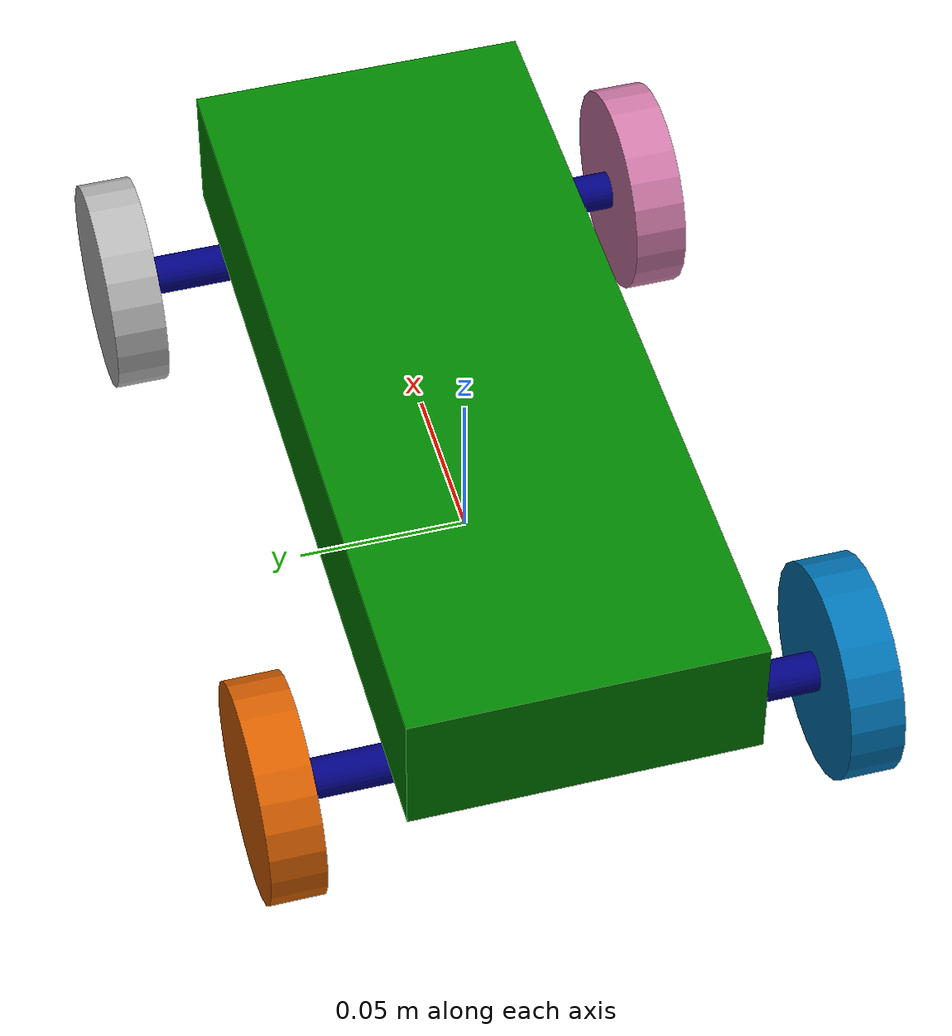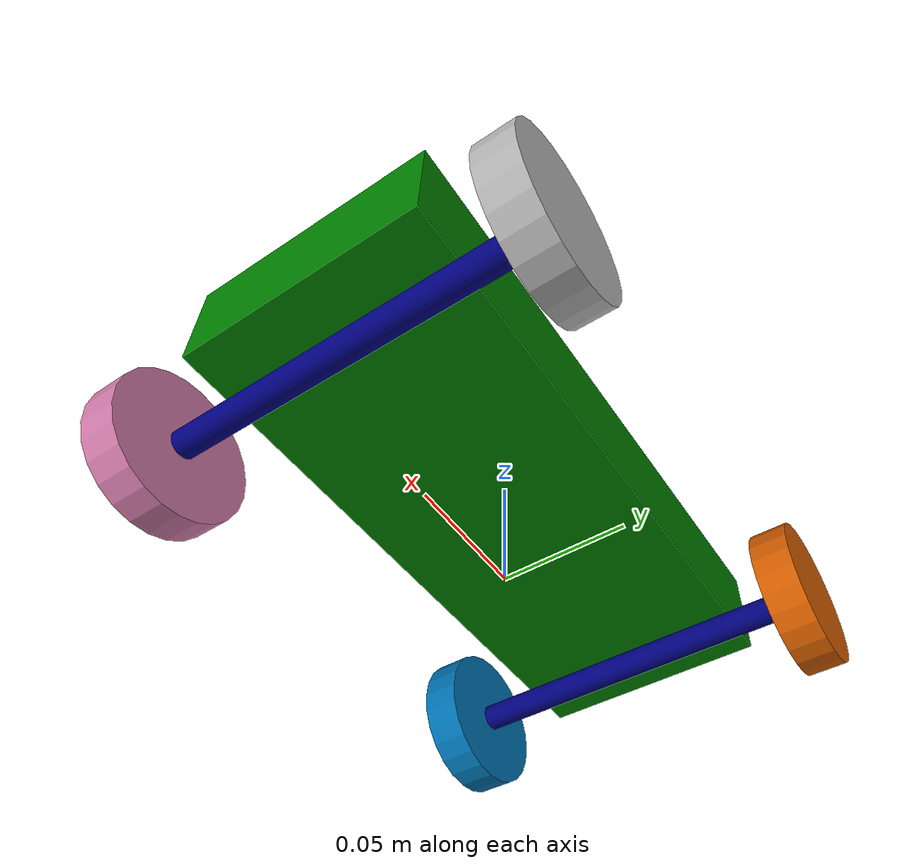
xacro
<?xml version="1.0"?>

<robot xmlns:xacro="http://www.ros.org/wiki/xacro" name="ackermann_robot">

    <xacro:include filename="inertia_macro.xacro"/>

    <!-- chassis -->
    <xacro:property name="base_length" value='0.25'/>
    <xacro:property name="base_width" value= '${base_length/2.5}'/>
    <xacro:property name="base_height" value='${base_width/2.5}'/>

    <!-- wheels  -->
    <xacro:property name="wheel_radius" value='${base_length/8.0}'/>
    <xacro:property name="wheel_length" value='${wheel_radius/2.0}'/>

    <!-- wheeltracker and wheelbase -->
    <xacro:property name="wheel_base" value='${base_length*0.8}'/>
    <xacro:property name="tracker_radius" value='${base_height/7.0}'/>
    <xacro:property name="tracker_length" value='${base_width +(1.5*wheel_radius)}'/>

    <xacro:property name="sphere_radius" value='${wheel_radius/2.0}'/>
    <xacro:property name="correction" value='3.0'/>

    <!-- colors  -->
    <material name='green'><color rgba="0.0 0.5 0.0 1.0"/></material>
    <material name='blue'><color rgba="0.0 0.0 0.5 1.0"/></material>

    <!-- base link -->
    <link name="base_footprint"></link>
    <link name="base_link">
        <visual>
            <geometry>
                <box size="${base_length} ${base_width} ${base_height} "/>
            </geometry>
            <origin xyz="0.0 0.0 ${base_height/2.0}" rpy="0.0 0.0 0.0"/>
            <material name="green"/>
        </visual>
        <xacro:box_inertia m='0.1' l='${correction * base_length}' w='${correction * base_width}' h='${correction * base_height}' xyz="0.0 0.0 0.0" rpy="0.0 0.0 0.0"/>
        <collision>
            <geometry>
                <box size="${base_length} ${base_width} ${base_height} "/>
            </geometry>
            <origin xyz="0.0 0.0 ${base_height/2.0}" rpy="0.0 0.0 0.0"/>
        </collision>
    </link>
    <joint name="base_foot_joint" type="fixed">
        <parent link="base_footprint"/>
        <child link="base_link"/>
        <origin xyz="0.0 0.0 ${wheel_radius} " rpy="0 0.0 0.0"/>
    </joint>

    <!-- front tracker -->
    <link name="front_tracker">
        <visual>
            <geometry>
                <cylinder radius="${tracker_radius}" length="${tracker_length}"/>
            </geometry>
            <origin xyz="0.0 0.0 0.0" rpy="0.0 0.0 0.0"/>
            <material name="blue"/>
        </visual>
        <xacro:cylinder_inertia m='0.01' r='${correction * wheel_radius}' h='${correction * wheel_length}' xyz="0.0 0.0 0.0" rpy="0.0 0.0 0.0" />
        <collision>
            <geometry>
                <cylinder radius="${tracker_radius}" length="${wheel_length}"/>
            </geometry>
            <origin xyz="0.0 0.0 0.0" rpy="0.0 0.0 0.0"/>
        </collision>
    </link>
    <joint name="front_tracker_joint" type="revolute">
        <parent link="base_link"/>
        <child link="front_tracker"/>
        <limit lower="-0.4" upper="0.4" effort="100" velocity="100"/>
        <origin xyz="${wheel_base/2.0} 0.0 -${tracker_radius}" rpy="-${pi/2.0} 0.0 0.0"/>
        <axis xyz="0.0 -1 0"/>
    </joint>

    <!-- rear tracker -->
    <link name="rear_tracker">
        <visual>
            <geometry>
                <cylinder radius="${tracker_radius}" length="${tracker_length}"/>
            </geometry>
            <origin xyz="0.0 0.0 0.0" rpy="0.0 0.0 0.0"/>
            <material name="blue"/>
        </visual>
        <xacro:cylinder_inertia m='0.01' r='${correction * wheel_radius}' h='${correction * wheel_length}' xyz="0.0 0.0 0.0" rpy="0.0 0.0 0.0" />
        <collision>
            <geometry>
                <cylinder radius="${tracker_radius}" length="${wheel_length}"/>
            </geometry>
            <origin xyz="0.0 0.0 0.0" rpy="0.0 0.0 0.0"/>
        </collision>
    </link>
    <joint name="rear_tracker_joint" type="continuous">
        <parent link="base_link"/>
        <child link="rear_tracker"/>
        <axis xyz="0 0 1"/>
        <origin xyz="-${wheel_base/2.0} 0.0 -${tracker_radius}" rpy="-${pi/2.0} 0.0 0.0"/>
    </joint>

    <!-- rear right wheel -->
    <link name="rear_right_wheel_link">
        <visual>
            <geometry>
                <cylinder radius="${wheel_radius}" length="${wheel_length}"/>
            </geometry>
            <origin xyz="0.0 0.0 0.0" rpy="0.0 0.0 0.0"/>
        </visual>
        <xacro:cylinder_inertia m='0.01' r='${correction * wheel_radius}' h='${correction * wheel_length}' xyz="0.0 0.0 0.0" rpy="0.0 0.0 0.0" />
        <collision>
            <geometry>
                <cylinder radius="${wheel_radius}" length="${wheel_length}"/>
            </geometry>
            <origin xyz="0.0 0.0 0.0" rpy="0.0 0.0 0.0"/>
        </collision>
    </link>
    <joint name="rear_right_wheel_joint" type="fixed">
        <parent link="rear_tracker"/>
        <child link="rear_right_wheel_link"/>
        <origin xyz="0.0 0.0 -${tracker_length/2.0 + wheel_length/2.0}" rpy="0.0 0.0 0.0"/>
    </joint>

    <!-- rear left wheel -->
    <link name="rear_left_wheel_link">
        <visual>
            <geometry>
                <cylinder radius="${wheel_radius}" length="${wheel_length}"/>
            </geometry>
            <origin xyz="0.0 0.0 0.0" rpy="0.0 0.0 0.0"/>
        </visual>
        <xacro:cylinder_inertia m='0.01' r='${correction * wheel_radius}' h='${correction * wheel_length}' xyz="0.0 0.0 0.0" rpy="0.0 0.0 0.0" />
        <collision>
            <geometry>
                <cylinder radius="${wheel_radius}" length="${wheel_length}"/>
            </geometry>
            <origin xyz="0.0 0.0 0.0" rpy="0.0 0.0 0.0"/>
        </collision>
    </link>
    <joint name="rear_left_wheel_joint" type="fixed">
        <parent link="rear_tracker"/>
        <child link="rear_left_wheel_link"/>
        <origin xyz="0.0 0.0 ${tracker_length/2.0 + wheel_length/2.0}" rpy="0.0 0.0 0.0"/>
    </joint>

    <!-- front left steer -->
    <link name="front_left_wheel_link">
        <visual>
            <geometry>
                <cylinder radius="${wheel_radius}" length="${wheel_length}"/>
            </geometry>
            <origin xyz="0.0 0.0 0.0" rpy="0.0 0.0 0.0"/>
        </visual>
        <xacro:cylinder_inertia m='0.01' r='${correction * wheel_radius}' h='${correction * wheel_length}' xyz="0.0 0.0 0.0" rpy="0.0 0.0 0.0" />
        <collision>
            <geometry>
                <cylinder radius="${wheel_radius}" length="${wheel_length}"/>
            </geometry>
        </collision>
    </link>
    <joint name="front_left_wheel_joint" type="continuous">
        <parent link="front_tracker"/>
        <child link="front_left_wheel_link"/>
        <origin xyz="0.0 0.0 -${tracker_length/2.0 + wheel_length/2.0}" rpy="0.0 0.0 0.0"/>
        <axis xyz="0 0 1"/>
        <mimic joint="rear_tracker_joint" multiplier="1.0" offet="0.0"/>
    </joint>

    <!-- front right wheel -->
    <link name="front_right_wheel_link">
        <visual>
            <geometry>
                <cylinder radius="${wheel_radius}" length="${wheel_length}"/>
            </geometry>
            <origin xyz="0.0 0.0 0.0" rpy="0.0 0.0 0.0"/>
        </visual>
        <xacro:cylinder_inertia m='0.01' r='${correction * wheel_radius}' h='${correction * wheel_length}' xyz="0.0 0.0 0.0" rpy="0.0 0.0 0.0" />
        <collision>
            <geometry>
                <cylinder radius="${wheel_radius}" length="${wheel_length}"/>
            </geometry>
            <origin xyz="0.0 0.0 0.0" rpy="0.0 0.0 0.0"/>
        </collision>
    </link>
    <joint name="front_right_wheel_joint" type="continuous">
        <parent link="front_tracker"/>
        <child link="front_right_wheel_link"/>
        <origin xyz="0.0 0.0 ${tracker_length/2.0 + wheel_length/2.0}" rpy="0.0 0.0 0.0"/>
        <axis xyz="0 0 1"/>
        <mimic joint="rear_tracker_joint" multiplier="1.0" offet="0.0"/>
    </joint>

</robot>

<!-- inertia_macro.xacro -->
<robot xmlns:xacro="http://www.ros.org/wiki/xacro" name="macros">

    <!-- adding correction propeties -->
    <xacro:property name="correction" value="2.0"/>

    <!-- box intertia -->
    <xacro:macro name='box_inertia' params="m l w h xyz rpy">
        <inertial>
            <origin xyz='${xyz}' rpy='${rpy}'/>
            <mass value="${m}"/>
            <inertia ixx="${(m/12.0) * (h*h + l*l)}" ixy="0.0" ixz="0.0" iyy="${(m/12)*(w*w + h*h)}" iyz="0.0" izz="${(m/12)*(w*w + l*l)}"/>
        </inertial>
    </xacro:macro>

    <!-- cylinder inertia  -->
    <xacro:macro name='cylinder_inertia' params='m r h xyz rpy'>
        <inertial>
            <origin xyz="${xyz}" rpy="${rpy}"/>
            <mass value='${m}'/>
            <inertia ixx="${(m/12) * ((3*r*r)+(h*h))}" ixy="0.0" ixz="0.0" iyy="${(m/12) * ((3*r*r)+(h*h))}" iyz="0.0" izz="${(m/2)*r*r}"/>
        </inertial>
    </xacro:macro>

    <!-- for sphere -->
    <xacro:macro name='sphere_inertia' params='m r xyz rpy'>
        <inertial>
            <origin xyz="${xyz}" rpy="${rpy}"/>
            <mass value="${m}"/>
            <inertia ixx="${2*m*r*r/5}" ixy="0.0" ixz="0.0" iyy="${2*m*r*r/5}" iyz="0.0" izz="${2*m*r*r/5}"/>
        </inertial>
    </xacro:macro>

</robot>
